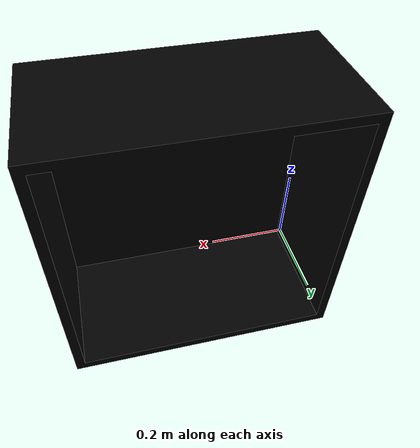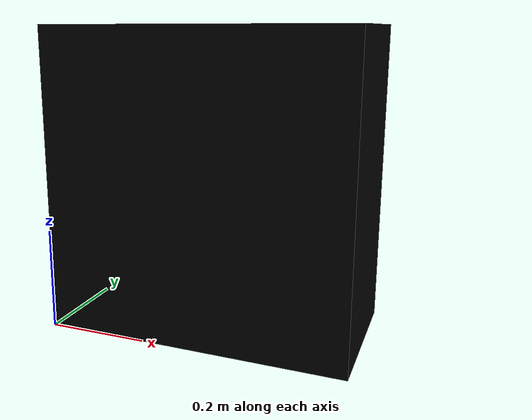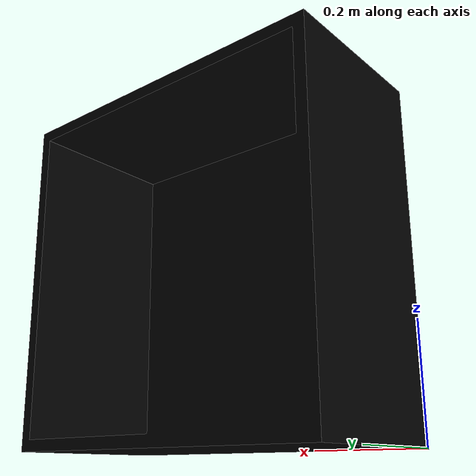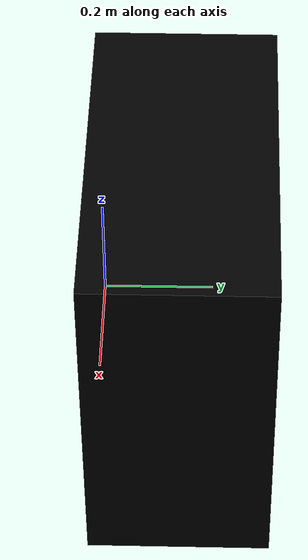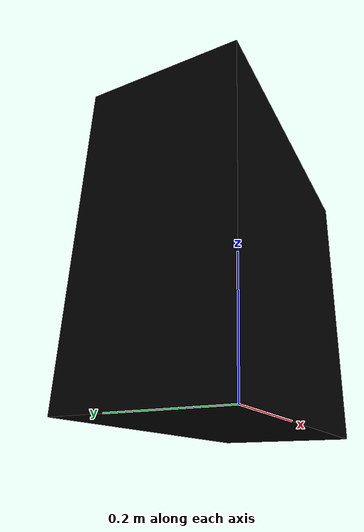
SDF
<?xml version="1.0"?>
<sdf version="1.9">
  <model name="MedKitBox">
    <static>true</static>
    <link name="link">
      <collision name="collision">
        <geometry>
          <mesh>
            <uri>model://MedKitBox/meshes/MedKitBox.dae</uri>
            <scale>0.001 0.001 0.001</scale>
          </mesh>
        </geometry>
      </collision>

      <visual name="visual">
        <geometry>
          <mesh>
            <uri>model://MedKitBox/meshes/MedKitBox.dae</uri>
            <scale>0.001 0.001 0.001</scale>
          </mesh>
        </geometry>
        <material>
          <ambient>0 0 0 1</ambient>
          <diffuse>0 0 0 1</diffuse>
          <specular>0 0 0 1</specular>
          <emissive>0 0 0 1</emissive>
        </material>
      </visual>

    </link>
  </model>
</sdf>
